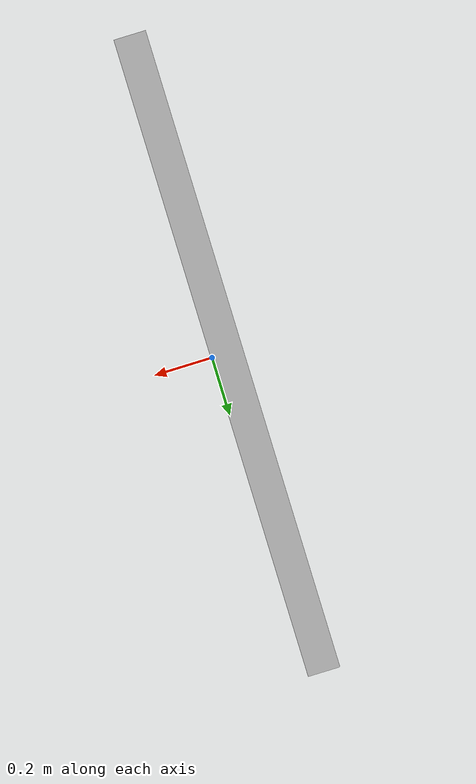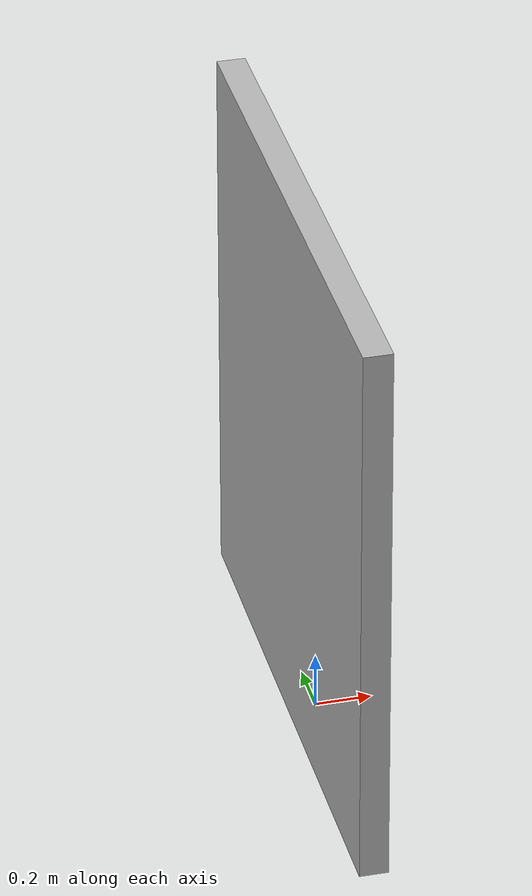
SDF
<?xml version='1.0'?>
<sdf version="1.5">
    <model name="chekerboard_pattern">
    <static>true</static>
        <link name="link">
        <visual name="visual">
            <pose>-0.05 0 1 0 0 1.570796</pose>
            <geometry>
            <mesh>
                <uri>model://chekerboard_pattern/meshes/calibration_pattern_8x8_2m.dae</uri>
            </mesh>
            </geometry>
        </visual>
        </link>
    </model>
</sdf>
